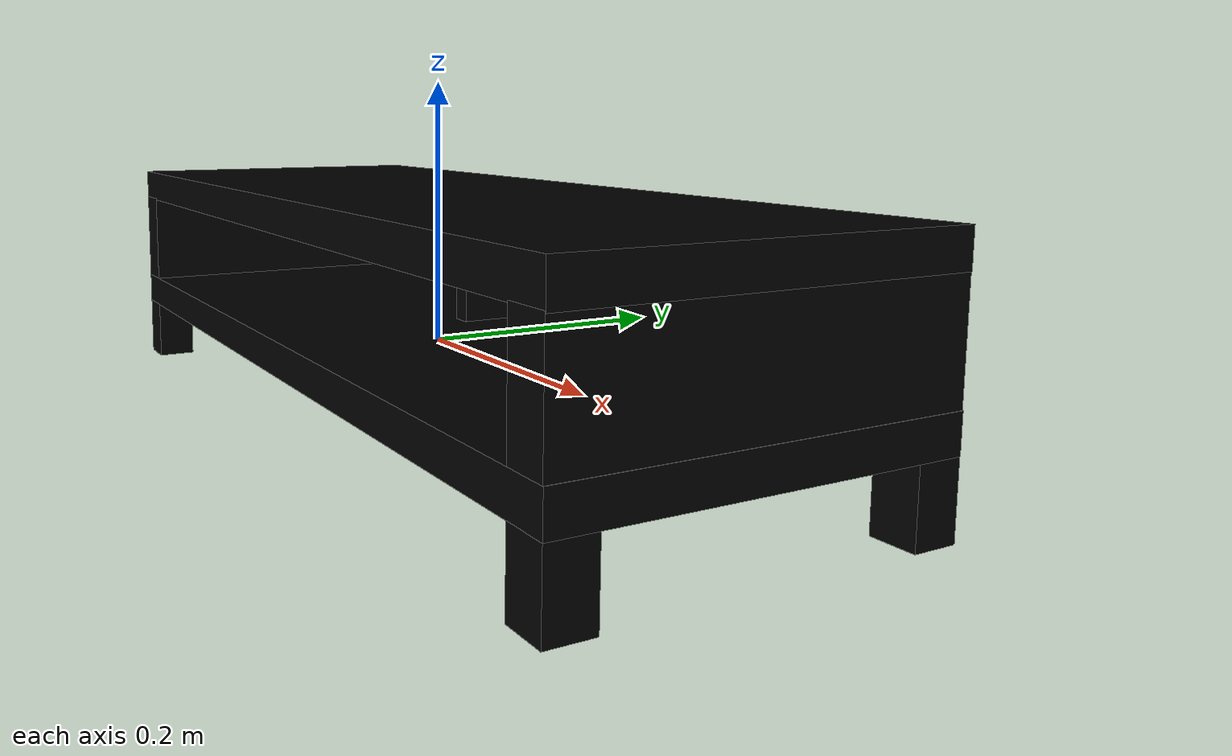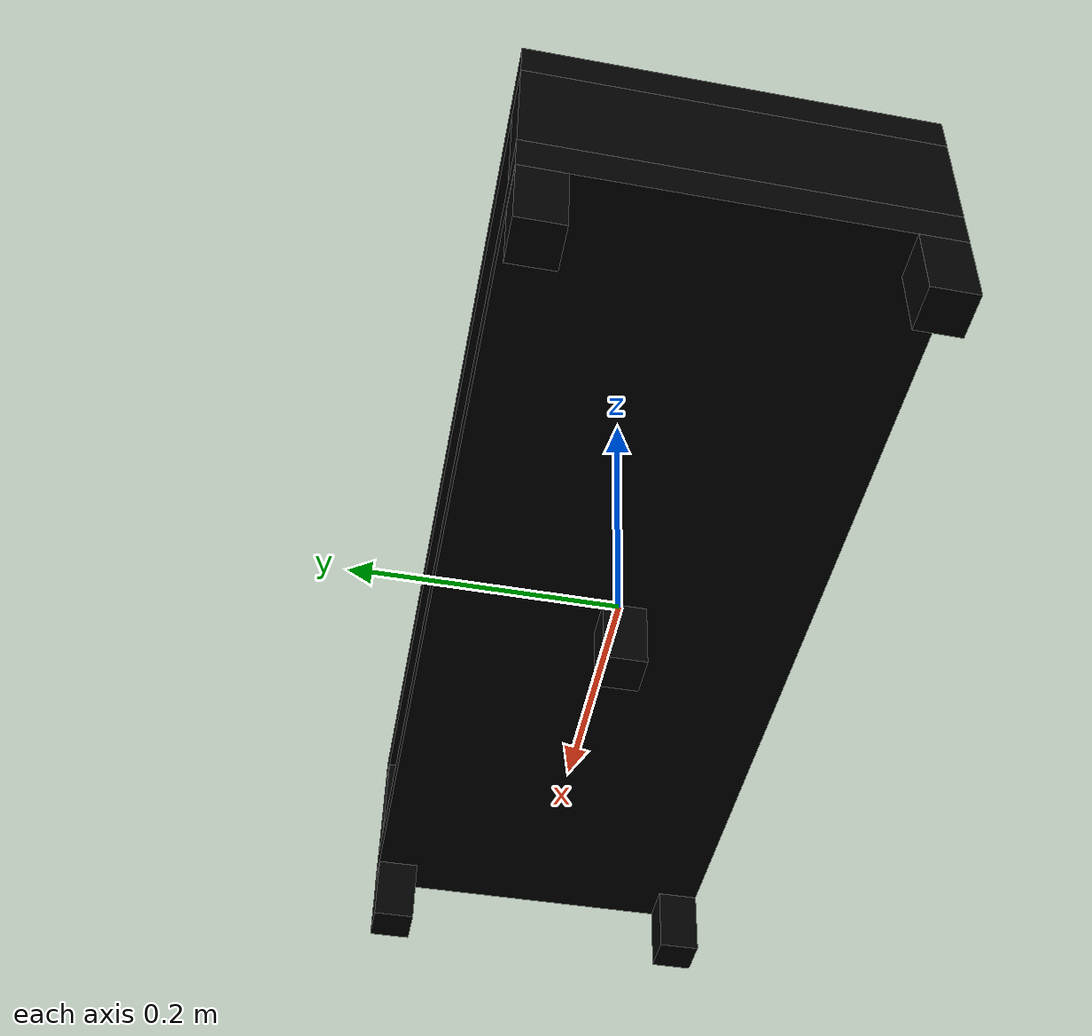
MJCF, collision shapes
<mujoco model="tvunit_lack_0830">
    <custom>
        <numeric data="0.063734 0.203201 0.013249 0 -0 -1 0" name="0_part0_initpos"/>
        <numeric data="0.072383 -0.174408 0.013078 0 -1 0 0" name="9_part9_initpos"/>
        <numeric data="0.541 0.009119 0.0078 0.706761 0.022102 -0.706761 0.022102" name="8_part8_initpos"/>
        <numeric data="0.573934 -0.229309 0.016028 -0.706631 -0.025943 0.706631 -0.025943" name="7_part7_initpos"/>
        <numeric data="-0.41802 -0.221782 0.015554 0.035814 -0.706199 0.035814 0.706199" name="6_part6_initpos"/>
        <numeric data="-0.387543 0.045523 0.015872 0.70687 -0.70687 -0.018287 0.018287" name="5_part5_initpos"/>
        <numeric data="-0.399809 0.305374 0.016183 0.706684 -0.706684 0.024436 -0.024436" name="4_part4_initpos"/>
        <numeric data="0.542062 0.292214 0.016183 0.707107 -0.707107 3.4e-05 -3.4e-05" name="3_part3_initpos"/>
        <numeric data="-0.391025 0.170627 0.015872 0.707052 -0.707052 -0.008812 0.008812" name="2_part2_initpos"/>
        <numeric data="0.536927 0.149925 0.016183 0.706708 -0.706708 -0.023737 0.023737" name="1_part1_initpos"/>
    </custom>
    <asset>
        <mesh file="tvunit_lack_0830/0.stl" name="part0" scale="0.0005 0.0005 0.0005"/>
        <mesh file="tvunit_lack_0830/9.stl" name="part9" scale="0.0005 0.0005 0.0005"/>
        <mesh file="tvunit_lack_0830/8.stl" name="part8" scale="0.0005 0.0005 0.0005"/>
        <mesh file="tvunit_lack_0830/7.stl" name="part7" scale="0.0005 0.0005 0.0005"/>
        <mesh file="tvunit_lack_0830/6.stl" name="part6" scale="0.0005 0.0005 0.0005"/>
        <mesh file="tvunit_lack_0830/5.stl" name="part5" scale="0.0005 0.0005 0.0005"/>
        <mesh file="tvunit_lack_0830/4.stl" name="part4" scale="0.0005 0.0005 0.0005"/>
        <mesh file="tvunit_lack_0830/3.stl" name="part3" scale="0.0005 0.0005 0.0005"/>
        <mesh file="tvunit_lack_0830/2.stl" name="part2" scale="0.0005 0.0005 0.0005"/>
        <mesh file="tvunit_lack_0830/1.stl" name="part1" scale="0.0005 0.0005 0.0005"/>
    </asset>
    <equality>
        <weld active="false" body1="9_part9" body2="8_part8" solimp="1 1 0.5" solref="0.01 0.3"/>
        <weld active="false" body1="0_part0" body2="4_part4" solimp="1 1 0.5" solref="0.01 0.3"/>
        <weld active="false" body1="0_part0" body2="1_part1" solimp="1 1 0.5" solref="0.01 0.3"/>
        <weld active="false" body1="0_part0" body2="5_part5" solimp="1 1 0.5" solref="0.01 0.3"/>
        <weld active="false" body1="0_part0" body2="2_part2" solimp="1 1 0.5" solref="0.01 0.3"/>
        <weld active="false" body1="0_part0" body2="3_part3" solimp="1 1 0.5" solref="0.01 0.3"/>
        <weld active="false" body1="0_part0" body2="8_part8" solimp="1 1 0.5" solref="0.01 0.3"/>
        <weld active="false" body1="0_part0" body2="6_part6" solimp="1 1 0.5" solref="0.01 0.3"/>
        <weld active="false" body1="0_part0" body2="7_part7" solimp="1 1 0.5" solref="0.01 0.3"/>
        <weld active="false" body1="9_part9" body2="6_part6" solimp="1 1 0.5" solref="0.01 0.3"/>
        <weld active="false" body1="9_part9" body2="7_part7" solimp="1 1 0.5" solref="0.01 0.3"/>
        <weld active="false" body1="0_part0" body2="8_part8" solimp="1 1 0.5" solref="0.01 0.3"/>
        <weld active="false" body1="0_part0" body2="6_part6" solimp="1 1 0.5" solref="0.01 0.3"/>
        <weld active="false" body1="0_part0" body2="7_part7" solimp="1 1 0.5" solref="0.01 0.3"/>
        <weld active="false" body1="9_part9" body2="6_part6" solimp="1 1 0.5" solref="0.01 0.3"/>
        <weld active="false" body1="9_part9" body2="7_part7" solimp="1 1 0.5" solref="0.01 0.3"/>
        <weld active="false" body1="9_part9" body2="8_part8" solimp="1 1 0.5" solref="0.01 0.3"/>
        <weld active="false" body1="0_part0" body2="2_part2" solimp="1 1 0.5" solref="0.01 0.3"/>
        <weld active="false" body1="0_part0" body2="1_part1" solimp="1 1 0.5" solref="0.01 0.3"/>
        <weld active="false" body1="0_part0" body2="5_part5" solimp="1 1 0.5" solref="0.01 0.3"/>
        <weld active="false" body1="0_part0" body2="3_part3" solimp="1 1 0.5" solref="0.01 0.3"/>
        <weld active="false" body1="0_part0" body2="4_part4" solimp="1 1 0.5" solref="0.01 0.3"/>
    </equality>
    <worldbody>
        <body name="0_part0" pos="0.0 0.0 0.0" quat="1 0 0 0">
            <geom conaffinity="0" contype="0" density="0" mesh="part0" name="0_part0_mesh" pos="0.0 0.0 0.0"
                  rgba="0.82 0.71 0.55 1" type="mesh"/>
            <site name="0_part0_horizontal_radius_site" pos="0.0 0.0 0.0" quat="1 0 0 0" rgba="0 0 0 0" size="0.0005"/>
            <site name="0_part0_top_site" pos="0.0 0.0 0.0132492752" quat="1 0 0 0" rgba="0 0 0 0" size="0.0005"/>
            <site name="0_part0_bottom_site" pos="0.0 0.0 -0.0132492752" quat="1 0 0 0" rgba="0 0 0 0" size="0.0005"/>
            <site name="0_part0_corner_site8" pos="-0.36830001830000003 0.13853962709999998 0.0132492752" quat="1 0 0 0"
                  rgba="0 0 0 0" size="0.010000000000000002"/>
            <site name="0_part0_corner_site7" pos="0.36830001830000003 0.13853962709999998 0.0132492752" quat="1 0 0 0"
                  rgba="0 0 0 0" size="0.010000000000000002"/>
            <site name="0_part0_corner_site6" pos="0.36830001830000003 -0.13853962709999998 0.0132492752" quat="1 0 0 0"
                  rgba="0 0 0 0" size="0.010000000000000002"/>
            <site name="0_part0_corner_site5" pos="-0.36830001830000003 -0.13853962709999998 0.0132492752"
                  quat="1 0 0 0" rgba="0 0 0 0" size="0.010000000000000002"/>
            <site name="0_part0_corner_site4" pos="-0.36830001830000003 0.13853962709999998 -0.0132492752"
                  quat="1 0 0 0" rgba="0 0 0 0" size="0.010000000000000002"/>
            <site name="0_part0_corner_site3" pos="0.36830001830000003 0.13853962709999998 -0.0132492752" quat="1 0 0 0"
                  rgba="0 0 0 0" size="0.010000000000000002"/>
            <site name="0_part0_corner_site2" pos="0.36830001830000003 -0.13853962709999998 -0.0132492752"
                  quat="1 0 0 0" rgba="0 0 0 0" size="0.010000000000000002"/>
            <site name="0_part0_corner_site1" pos="-0.36830001830000003 -0.13853962709999998 -0.0132492752"
                  quat="1 0 0 0" rgba="0 0 0 0" size="0.010000000000000002"/>
            <site name="bottom-leg,0,90,180,270,conn_site5" pos="-0.35250000000000004 -0.12 -0.013250000000000001"
                  quat="1 0 0 0" rgba="0.9019 0.0980 0.2941 0.3" size="0.005"/>
            <site name="bottom-leg,0,90,180,270,conn_site4" pos="-0.35250000000000004 0.12 -0.013250000000000001"
                  quat="1 0 0 0" rgba="0.9019 0.0980 0.2941 0.3" size="0.005"/>
            <site name="bottom-leg,0,90,180,270,conn_site3" pos="0.0 0.0 -0.013250000000000001" quat="1 0 0 0"
                  rgba="0.9019 0.0980 0.2941 0.3" size="0.005"/>
            <site name="bottom-leg,0,90,180,270,conn_site2" pos="0.35250000000000004 -0.12 -0.013250000000000001"
                  quat="1 0 0 0" rgba="0.9019 0.0980 0.2941 0.3" size="0.005"/>
            <site name="bottom-leg,0,90,180,270,conn_site1" pos="0.35250000000000004 0.12 -0.013250000000000001"
                  quat="1 0 0 0" rgba="0.9019 0.0980 0.2941 0.3" size="0.005"/>
            <site name="bottom-side,0,180,conn_site4" pos="0.35250000000000004 0.0 0.0125" quat="1 0 0 0"
                  rgba="0.2352 0.7058 0.2941 0.3" size="0.005"/>
            <site name="bottom-side,0,180,conn_site3" pos="-0.35250000000000004 0.0 0.0125" quat="1 0 0 0"
                  rgba="0.2352 0.7058 0.2941 0.3" size="0.005"/>
            <site name="bottom-center,0,180,conn_site1" pos="0.0 0.06969 0.0125" quat="1 0 0 0"
                  rgba="1.0 0.8823 0.0980 0.3" size="0.005"/>
            <geom density="50" name="noviz_collision_0_part0_0"
                  pos="-2.0000000000000004e-08 1.4310000000000002e-05 1.5085000000000002e-05" quat="1 0 0 0"
                  rgba="0 0 0 0" size="0.36830000000000007 0.13855395 0.013264360000000001" solref="0.001 1"
                  type="box"/>
        </body>
        <body name="9_part9" pos="0.0 0.0 0.10476959915000002" quat="1 0 0 0">
            <geom conaffinity="0" contype="0" density="0" mesh="part9" name="9_part9_mesh" pos="0.0 0.0 0.0"
                  rgba="0.82 0.71 0.55 1" type="mesh"/>
            <site name="9_part9_horizontal_radius_site" pos="0.0 0.0 5.000000000000001e-11" quat="1 0 0 0"
                  rgba="0 0 0 0" size="0.0005"/>
            <site name="9_part9_top_site" pos="0.0 0.0 0.0132492752" quat="1 0 0 0" rgba="0 0 0 0" size="0.0005"/>
            <site name="9_part9_bottom_site" pos="0.0 0.0 -0.0132492751" quat="1 0 0 0" rgba="0 0 0 0" size="0.0005"/>
            <site name="9_part9_corner_site8" pos="-0.36830001830000003 0.13853962709999998 0.0132492752" quat="1 0 0 0"
                  rgba="0 0 0 0" size="0.010000000000000002"/>
            <site name="9_part9_corner_site7" pos="0.36830001830000003 0.13853962709999998 0.0132492752" quat="1 0 0 0"
                  rgba="0 0 0 0" size="0.010000000000000002"/>
            <site name="9_part9_corner_site6" pos="0.36830001830000003 -0.13853962709999998 0.0132492752" quat="1 0 0 0"
                  rgba="0 0 0 0" size="0.010000000000000002"/>
            <site name="9_part9_corner_site5" pos="-0.36830001830000003 -0.13853962709999998 0.0132492752"
                  quat="1 0 0 0" rgba="0 0 0 0" size="0.010000000000000002"/>
            <site name="9_part9_corner_site4" pos="-0.36830001830000003 0.13853962709999998 -0.0132492751"
                  quat="1 0 0 0" rgba="0 0 0 0" size="0.010000000000000002"/>
            <site name="9_part9_corner_site3" pos="0.36830001830000003 0.13853962709999998 -0.0132492751" quat="1 0 0 0"
                  rgba="0 0 0 0" size="0.010000000000000002"/>
            <site name="9_part9_corner_site2" pos="0.36830001830000003 -0.13853962709999998 -0.0132492751"
                  quat="1 0 0 0" rgba="0 0 0 0" size="0.010000000000000002"/>
            <site name="9_part9_corner_site1" pos="-0.36830001830000003 -0.13853962709999998 -0.0132492751"
                  quat="1 0 0 0" rgba="0 0 0 0" size="0.010000000000000002"/>
            <site name="top-side,0,180,conn_site2" pos="0.35250000000000004 0.0 -0.013269600000000001" quat="0 1 0 0"
                  rgba="0.2627 0.3882 0.8470 0.3" size="0.005"/>
            <site name="top-side,0,180,conn_site1" pos="-0.35250000000000004 0.0 -0.013269600000000001" quat="0 1 0 0"
                  rgba="0.2627 0.3882 0.8470 0.3" size="0.005"/>
            <site name="top-center,0,180,conn_site1" pos="0.0 0.06969 -0.013269600000000001" quat="0 1 0 0"
                  rgba="0.9607 0.5098 0.1921 0.3" size="0.005"/>
            <geom density="50" name="noviz_collision_9_part9_0"
                  pos="3.1150000000000007e-06 -3.825000000000001e-06 -7.0685e-05" quat="1 0 0 0" rgba="0 0 0 0"
                  size="0.36830315 0.1385358 0.013178590000000002" solref="0.001 1" type="box"/>
        </body>
        <body name="8_part8" pos="-0.0002363927 0.06955808375 0.052384798700000006" quat="1 0 0 0">
            <geom conaffinity="0" contype="0" density="0" mesh="part8" name="8_part8_mesh" pos="0.0 0.0 0.0"
                  rgba="0.82 0.71 0.55 1" type="mesh"/>
            <site name="8_part8_horizontal_radius_site" pos="1.0000000000000002e-10 4.5e-10 -0.0" quat="1 0 0 0"
                  rgba="0 0 0 0" size="0.0005"/>
            <site name="8_part8_top_site" pos="5.000000000000001e-11 5e-10 0.0391355253" quat="1 0 0 0" rgba="0 0 0 0"
                  size="0.0005"/>
            <site name="8_part8_bottom_site" pos="5.000000000000001e-11 5e-10 -0.0391355253" quat="1 0 0 0"
                  rgba="0 0 0 0" size="0.0005"/>
            <site name="8_part8_corner_site8" pos="-0.007830292700000002 0.048740226750000004 0.0391355253"
                  quat="1 0 0 0" rgba="0 0 0 0" size="0.010000000000000002"/>
            <site name="8_part8_corner_site7" pos="0.007830292850000002 0.048740226750000004 0.0391355253"
                  quat="1 0 0 0" rgba="0 0 0 0" size="0.010000000000000002"/>
            <site name="8_part8_corner_site6" pos="0.007830292850000002 -0.0487402258 0.0391355253" quat="1 0 0 0"
                  rgba="0 0 0 0" size="0.010000000000000002"/>
            <site name="8_part8_corner_site5" pos="-0.007830292700000002 -0.0487402258 0.0391355253" quat="1 0 0 0"
                  rgba="0 0 0 0" size="0.010000000000000002"/>
            <site name="8_part8_corner_site4" pos="-0.007830292700000002 0.048740226750000004 -0.0391355253"
                  quat="1 0 0 0" rgba="0 0 0 0" size="0.010000000000000002"/>
            <site name="8_part8_corner_site3" pos="0.007830292850000002 0.048740226750000004 -0.0391355253"
                  quat="1 0 0 0" rgba="0 0 0 0" size="0.010000000000000002"/>
            <site name="8_part8_corner_site2" pos="0.007830292850000002 -0.0487402258 -0.0391355253" quat="1 0 0 0"
                  rgba="0 0 0 0" size="0.010000000000000002"/>
            <site name="8_part8_corner_site1" pos="-0.007830292700000002 -0.0487402258 -0.0391355253" quat="1 0 0 0"
                  rgba="0 0 0 0" size="0.010000000000000002"/>
            <site name="center-bottom,0,180,conn_site1" pos="0.00023639500000000003 0.00013192000000000002 -0.0398848"
                  quat="1 0 0 0" rgba="1.0 0.8823 0.0980 0.3" size="0.005"/>
            <site name="center-top,0,180,conn_site1" pos="0.00023639500000000003 0.00013192000000000002 0.0391152"
                  quat="0 1 0 0" rgba="0.9607 0.5098 0.1921 0.3" size="0.005"/>
            <geom density="50" name="noviz_collision_8_part8_0" pos="5.01e-06 0.00013191 0.0" quat="1 0 0 0"
                  rgba="0 0 0 0" size="0.007835305 0.04887214000000001 0.03913553" solref="0.001 1" type="box"/>
        </body>
        <body name="7_part7" pos="-0.35224241354999997 0.0 0.052384798700000006" quat="1 0 0 0">
            <geom conaffinity="0" contype="0" density="0" mesh="part7" name="7_part7_mesh" pos="0.0 0.0 0.0"
                  rgba="0.82 0.71 0.55 1" type="mesh"/>
            <site name="7_part7_horizontal_radius_site" pos="-0.0 0.0 0.0" quat="1 0 0 0" rgba="0 0 0 0" size="0.0005"/>
            <site name="7_part7_top_site" pos="-5.000000000000001e-11 0.0 0.0391355253" quat="1 0 0 0" rgba="0 0 0 0"
                  size="0.0005"/>
            <site name="7_part7_bottom_site" pos="-5.000000000000001e-11 0.0 -0.0391355253" quat="1 0 0 0"
                  rgba="0 0 0 0" size="0.0005"/>
            <site name="7_part7_corner_site8" pos="-0.016057600050000002 0.13853962709999998 0.0391355253"
                  quat="1 0 0 0" rgba="0 0 0 0" size="0.010000000000000002"/>
            <site name="7_part7_corner_site7" pos="0.0160576 0.13853962709999998 0.0391355253" quat="1 0 0 0"
                  rgba="0 0 0 0" size="0.010000000000000002"/>
            <site name="7_part7_corner_site6" pos="0.0160576 -0.13853962709999998 0.0391355253" quat="1 0 0 0"
                  rgba="0 0 0 0" size="0.010000000000000002"/>
            <site name="7_part7_corner_site5" pos="-0.016057600050000002 -0.13853962709999998 0.0391355253"
                  quat="1 0 0 0" rgba="0 0 0 0" size="0.010000000000000002"/>
            <site name="7_part7_corner_site4" pos="-0.016057600050000002 0.13853962709999998 -0.0391355253"
                  quat="1 0 0 0" rgba="0 0 0 0" size="0.010000000000000002"/>
            <site name="7_part7_corner_site3" pos="0.0160576 0.13853962709999998 -0.0391355253" quat="1 0 0 0"
                  rgba="0 0 0 0" size="0.010000000000000002"/>
            <site name="7_part7_corner_site2" pos="0.0160576 -0.13853962709999998 -0.0391355253" quat="1 0 0 0"
                  rgba="0 0 0 0" size="0.010000000000000002"/>
            <site name="7_part7_corner_site1" pos="-0.016057600050000002 -0.13853962709999998 -0.0391355253"
                  quat="1 0 0 0" rgba="0 0 0 0" size="0.010000000000000002"/>
            <site name="side-bottom,0,180,conn_site3" pos="-0.00025760000000000003 0.0 -0.0398848" quat="1 0 0 0"
                  rgba="0.2352 0.7058 0.2941 0.3" size="0.005"/>
            <site name="side-top,0,180,conn_site1" pos="-0.00025760000000000003 0.0 0.0391152" quat="0 1 0 0"
                  rgba="0.2627 0.3882 0.8470 0.3" size="0.005"/>
            <geom density="50" name="noviz_collision_7_part7_0" pos="0.000236755 0.0 0.0006218850000000001"
                  quat="1 0 0 0" rgba="0 0 0 0" size="0.016294375 0.13853965 0.039757415000000004" solref="0.001 1"
                  type="box"/>
        </body>
        <body name="6_part6" pos="0.35224239640000005 0.0 0.052384798700000006" quat="1 0 0 0">
            <geom conaffinity="0" contype="0" density="0" mesh="part6" name="6_part6_mesh" pos="0.0 0.0 0.0"
                  rgba="0.82 0.71 0.55 1" type="mesh"/>
            <site name="6_part6_horizontal_radius_site" pos="0.0 0.0 0.0" quat="1 0 0 0" rgba="0 0 0 0" size="0.0005"/>
            <site name="6_part6_top_site" pos="0.0 0.0 0.0391355253" quat="1 0 0 0" rgba="0 0 0 0" size="0.0005"/>
            <site name="6_part6_bottom_site" pos="0.0 0.0 -0.0391355253" quat="1 0 0 0" rgba="0 0 0 0" size="0.0005"/>
            <site name="6_part6_corner_site8" pos="-0.0160576172 0.13853962709999998 0.0391355253" quat="1 0 0 0"
                  rgba="0 0 0 0" size="0.010000000000000002"/>
            <site name="6_part6_corner_site7" pos="0.0160576172 0.13853962709999998 0.0391355253" quat="1 0 0 0"
                  rgba="0 0 0 0" size="0.010000000000000002"/>
            <site name="6_part6_corner_site6" pos="0.0160576172 -0.13853962709999998 0.0391355253" quat="1 0 0 0"
                  rgba="0 0 0 0" size="0.010000000000000002"/>
            <site name="6_part6_corner_site5" pos="-0.0160576172 -0.13853962709999998 0.0391355253" quat="1 0 0 0"
                  rgba="0 0 0 0" size="0.010000000000000002"/>
            <site name="6_part6_corner_site4" pos="-0.0160576172 0.13853962709999998 -0.0391355253" quat="1 0 0 0"
                  rgba="0 0 0 0" size="0.010000000000000002"/>
            <site name="6_part6_corner_site3" pos="0.0160576172 0.13853962709999998 -0.0391355253" quat="1 0 0 0"
                  rgba="0 0 0 0" size="0.010000000000000002"/>
            <site name="6_part6_corner_site2" pos="0.0160576172 -0.13853962709999998 -0.0391355253" quat="1 0 0 0"
                  rgba="0 0 0 0" size="0.010000000000000002"/>
            <site name="6_part6_corner_site1" pos="-0.0160576172 -0.13853962709999998 -0.0391355253" quat="1 0 0 0"
                  rgba="0 0 0 0" size="0.010000000000000002"/>
            <site name="side-bottom,0,180,conn_site4" pos="0.00025760000000000003 0.0 -0.0398848" quat="1 0 0 0"
                  rgba="0.2352 0.7058 0.2941 0.3" size="0.005"/>
            <site name="side-top,0,180,conn_site2" pos="0.00025760000000000003 0.0 0.0391152" quat="0 1 0 0"
                  rgba="0.2627 0.3882 0.8470 0.3" size="0.005"/>
            <geom density="50" name="noviz_collision_6_part6_0" pos="-0.000236785 0.0 0.0006218850000000001"
                  quat="1 0 0 0" rgba="0 0 0 0" size="0.015820830000000004 0.13853965 0.039757415000000004"
                  solref="0.001 1" type="box"/>
        </body>
        <body name="5_part5" pos="0.3522392462000001 0.12247572000000001 -0.039096068350000006" quat="1 0 0 0">
            <geom conaffinity="0" contype="0" density="0" mesh="part5" name="5_part5_mesh" pos="0.0 0.0 0.0"
                  rgba="0.82 0.71 0.55 1" type="mesh"/>
            <site name="5_part5_horizontal_radius_site" pos="2.5e-10 -3.5000000000000003e-10 -3e-10" quat="1 0 0 0"
                  rgba="0 0 0 0" size="0.0005"/>
            <site name="5_part5_top_site" pos="2.5e-10 -4.0000000000000007e-10 0.0258467954" quat="1 0 0 0"
                  rgba="0 0 0 0" size="0.0005"/>
            <site name="5_part5_bottom_site" pos="2.5e-10 -4.0000000000000007e-10 -0.02584679605" quat="1 0 0 0"
                  rgba="0 0 0 0" size="0.0005"/>
            <site name="5_part5_corner_site8" pos="-0.01606076765 0.01605760955 0.0258467954" quat="1 0 0 0"
                  rgba="0 0 0 0" size="0.010000000000000002"/>
            <site name="5_part5_corner_site7" pos="0.01606076815 0.01605760955 0.0258467954" quat="1 0 0 0"
                  rgba="0 0 0 0" size="0.010000000000000002"/>
            <site name="5_part5_corner_site6" pos="0.01606076815 -0.0160576103 0.0258467954" quat="1 0 0 0"
                  rgba="0 0 0 0" size="0.010000000000000002"/>
            <site name="5_part5_corner_site5" pos="-0.01606076765 -0.0160576103 0.0258467954" quat="1 0 0 0"
                  rgba="0 0 0 0" size="0.010000000000000002"/>
            <site name="5_part5_corner_site4" pos="-0.01606076765 0.01605760955 -0.02584679605" quat="1 0 0 0"
                  rgba="0 0 0 0" size="0.010000000000000002"/>
            <site name="5_part5_corner_site3" pos="0.01606076815 0.01605760955 -0.02584679605" quat="1 0 0 0"
                  rgba="0 0 0 0" size="0.010000000000000002"/>
            <site name="5_part5_corner_site2" pos="0.01606076815 -0.0160576103 -0.02584679605" quat="1 0 0 0"
                  rgba="0 0 0 0" size="0.010000000000000002"/>
            <site name="5_part5_corner_site1" pos="-0.01606076765 -0.0160576103 -0.02584679605" quat="1 0 0 0"
                  rgba="0 0 0 0" size="0.010000000000000002"/>
            <site name="leg-bottom,0,90,180,270,conn_site1"
                  pos="0.00026074000000000003 -0.0024757250000000002 0.02584607" quat="1 0 0 0"
                  rgba="0.9019 0.0980 0.2941 0.3" size="0.005"/>
            <geom density="50" name="noviz_collision_5_part5_0" pos="-7.37e-05 -7.766000000000001e-05 0.000104315"
                  quat="1 0 0 0" rgba="0 0 0 0" size="0.015987090000000002 0.01597996 0.02595111" solref="0.001 1"
                  type="box"/>
        </body>
        <body name="4_part4" pos="0.3522392462000001 -0.12248202155000001 -0.039096068350000006" quat="1 0 0 0">
            <geom conaffinity="0" contype="0" density="0" mesh="part4" name="4_part4_mesh" pos="0.0 0.0 0.0"
                  rgba="0.82 0.71 0.55 1" type="mesh"/>
            <site name="4_part4_horizontal_radius_site" pos="2.5e-10 0.0 -3e-10" quat="1 0 0 0" rgba="0 0 0 0"
                  size="0.0005"/>
            <site name="4_part4_top_site" pos="2.5e-10 0.0 0.0258467954" quat="1 0 0 0" rgba="0 0 0 0" size="0.0005"/>
            <site name="4_part4_bottom_site" pos="2.5e-10 0.0 -0.02584679605" quat="1 0 0 0" rgba="0 0 0 0"
                  size="0.0005"/>
            <site name="4_part4_corner_site8" pos="-0.01606076765 0.01605763245 0.0258467954" quat="1 0 0 0"
                  rgba="0 0 0 0" size="0.010000000000000002"/>
            <site name="4_part4_corner_site7" pos="0.01606076815 0.01605763245 0.0258467954" quat="1 0 0 0"
                  rgba="0 0 0 0" size="0.010000000000000002"/>
            <site name="4_part4_corner_site6" pos="0.01606076815 -0.01605763245 0.0258467954" quat="1 0 0 0"
                  rgba="0 0 0 0" size="0.010000000000000002"/>
            <site name="4_part4_corner_site5" pos="-0.01606076765 -0.01605763245 0.0258467954" quat="1 0 0 0"
                  rgba="0 0 0 0" size="0.010000000000000002"/>
            <site name="4_part4_corner_site4" pos="-0.01606076765 0.01605763245 -0.02584679605" quat="1 0 0 0"
                  rgba="0 0 0 0" size="0.010000000000000002"/>
            <site name="4_part4_corner_site3" pos="0.01606076815 0.01605763245 -0.02584679605" quat="1 0 0 0"
                  rgba="0 0 0 0" size="0.010000000000000002"/>
            <site name="4_part4_corner_site2" pos="0.01606076815 -0.01605763245 -0.02584679605" quat="1 0 0 0"
                  rgba="0 0 0 0" size="0.010000000000000002"/>
            <site name="4_part4_corner_site1" pos="-0.01606076765 -0.01605763245 -0.02584679605" quat="1 0 0 0"
                  rgba="0 0 0 0" size="0.010000000000000002"/>
            <site name="leg-bottom,0,90,180,270,conn_site2"
                  pos="0.00026074000000000003 0.0024820250000000006 0.02584607" quat="1 0 0 0"
                  rgba="0.9019 0.0980 0.2941 0.3" size="0.005"/>
            <geom density="50" name="noviz_collision_4_part4_0" pos="-7.37e-05 7.7645e-05 0.000104315" quat="1 0 0 0"
                  rgba="0 0 0 0" size="0.015987090000000002 0.016135275 0.02595111" solref="0.001 1" type="box"/>
        </body>
        <body name="3_part3" pos="-1.3600000000000001e-08 -0.0010706179 -0.039096068350000006" quat="1 0 0 0">
            <geom conaffinity="0" contype="0" density="0" mesh="part3" name="3_part3_mesh" pos="0.0 0.0 0.0"
                  rgba="0.82 0.71 0.55 1" type="mesh"/>
            <site name="3_part3_horizontal_radius_site" pos="0.0 0.0 -3e-10" quat="1 0 0 0" rgba="0 0 0 0"
                  size="0.0005"/>
            <site name="3_part3_top_site" pos="0.0 0.0 0.0258467954" quat="1 0 0 0" rgba="0 0 0 0" size="0.0005"/>
            <site name="3_part3_bottom_site" pos="0.0 0.0 -0.02584679605" quat="1 0 0 0" rgba="0 0 0 0" size="0.0005"/>
            <site name="3_part3_corner_site8" pos="-0.01606075405 0.01605761335 0.0258467954" quat="1 0 0 0"
                  rgba="0 0 0 0" size="0.010000000000000002"/>
            <site name="3_part3_corner_site7" pos="0.01606075405 0.01605761335 0.0258467954" quat="1 0 0 0"
                  rgba="0 0 0 0" size="0.010000000000000002"/>
            <site name="3_part3_corner_site6" pos="0.01606075405 -0.01605761335 0.0258467954" quat="1 0 0 0"
                  rgba="0 0 0 0" size="0.010000000000000002"/>
            <site name="3_part3_corner_site5" pos="-0.01606075405 -0.01605761335 0.0258467954" quat="1 0 0 0"
                  rgba="0 0 0 0" size="0.010000000000000002"/>
            <site name="3_part3_corner_site4" pos="-0.01606075405 0.01605761335 -0.02584679605" quat="1 0 0 0"
                  rgba="0 0 0 0" size="0.010000000000000002"/>
            <site name="3_part3_corner_site3" pos="0.01606075405 0.01605761335 -0.02584679605" quat="1 0 0 0"
                  rgba="0 0 0 0" size="0.010000000000000002"/>
            <site name="3_part3_corner_site2" pos="0.01606075405 -0.01605761335 -0.02584679605" quat="1 0 0 0"
                  rgba="0 0 0 0" size="0.010000000000000002"/>
            <site name="3_part3_corner_site1" pos="-0.01606075405 -0.01605761335 -0.02584679605" quat="1 0 0 0"
                  rgba="0 0 0 0" size="0.010000000000000002"/>
            <site name="leg-bottom,0,90,180,270,conn_site3" pos="1.5000000000000002e-08 0.00107062 0.02584607"
                  quat="1 0 0 0" rgba="0.9019 0.0980 0.2941 0.3" size="0.005"/>
            <geom density="50" name="noviz_collision_3_part3_0" pos="7.368000000000001e-05 7.7645e-05 0.000104315"
                  quat="1 0 0 0" rgba="0 0 0 0" size="0.016134435 0.016135255 0.02595111" solref="0.001 1" type="box"/>
        </body>
        <body name="2_part2" pos="-0.35223925955 0.12248201835000001 -0.039096068350000006" quat="1 0 0 0">
            <geom conaffinity="0" contype="0" density="0" mesh="part2" name="2_part2_mesh" pos="0.0 0.0 0.0"
                  rgba="0.82 0.71 0.55 1" type="mesh"/>
            <site name="2_part2_horizontal_radius_site" pos="0.0 2.0000000000000003e-10 -3e-10" quat="1 0 0 0"
                  rgba="0 0 0 0" size="0.0005"/>
            <site name="2_part2_top_site" pos="0.0 2.0000000000000003e-10 0.0258467954" quat="1 0 0 0" rgba="0 0 0 0"
                  size="0.0005"/>
            <site name="2_part2_bottom_site" pos="0.0 2.0000000000000003e-10 -0.02584679605" quat="1 0 0 0"
                  rgba="0 0 0 0" size="0.0005"/>
            <site name="2_part2_corner_site8" pos="-0.01606075405 0.016057605750000002 0.0258467954" quat="1 0 0 0"
                  rgba="0 0 0 0" size="0.010000000000000002"/>
            <site name="2_part2_corner_site7" pos="0.01606075405 0.016057605750000002 0.0258467954" quat="1 0 0 0"
                  rgba="0 0 0 0" size="0.010000000000000002"/>
            <site name="2_part2_corner_site6" pos="0.01606075405 -0.01605760535 0.0258467954" quat="1 0 0 0"
                  rgba="0 0 0 0" size="0.010000000000000002"/>
            <site name="2_part2_corner_site5" pos="-0.01606075405 -0.01605760535 0.0258467954" quat="1 0 0 0"
                  rgba="0 0 0 0" size="0.010000000000000002"/>
            <site name="2_part2_corner_site4" pos="-0.01606075405 0.016057605750000002 -0.02584679605" quat="1 0 0 0"
                  rgba="0 0 0 0" size="0.010000000000000002"/>
            <site name="2_part2_corner_site3" pos="0.01606075405 0.016057605750000002 -0.02584679605" quat="1 0 0 0"
                  rgba="0 0 0 0" size="0.010000000000000002"/>
            <site name="2_part2_corner_site2" pos="0.01606075405 -0.01605760535 -0.02584679605" quat="1 0 0 0"
                  rgba="0 0 0 0" size="0.010000000000000002"/>
            <site name="2_part2_corner_site1" pos="-0.01606075405 -0.01605760535 -0.02584679605" quat="1 0 0 0"
                  rgba="0 0 0 0" size="0.010000000000000002"/>
            <site name="leg-bottom,0,90,180,270,conn_site4" pos="-0.00026074000000000003 -0.00248202 0.02584607"
                  quat="1 0 0 0" rgba="0.9019 0.0980 0.2941 0.3" size="0.005"/>
            <geom density="50" name="noviz_collision_2_part2_0" pos="7.367e-05 -7.765e-05 0.000104315" quat="1 0 0 0"
                  rgba="0 0 0 0" size="0.01613443 0.015979950000000003 0.02595111" solref="0.001 1" type="box"/>
        </body>
        <body name="1_part1" pos="-0.35223925955 -0.12248202155000001 -0.039096068350000006" quat="1 0 0 0">
            <geom conaffinity="0" contype="0" density="0" mesh="part1" name="1_part1_mesh" pos="0.0 0.0 0.0"
                  rgba="0.82 0.71 0.55 1" type="mesh"/>
            <site name="1_part1_horizontal_radius_site" pos="0.0 0.0 -3e-10" quat="1 0 0 0" rgba="0 0 0 0"
                  size="0.0005"/>
            <site name="1_part1_top_site" pos="0.0 0.0 0.0258467954" quat="1 0 0 0" rgba="0 0 0 0" size="0.0005"/>
            <site name="1_part1_bottom_site" pos="0.0 0.0 -0.02584679605" quat="1 0 0 0" rgba="0 0 0 0" size="0.0005"/>
            <site name="1_part1_corner_site8" pos="-0.01606075405 0.01605763245 0.0258467954" quat="1 0 0 0"
                  rgba="0 0 0 0" size="0.010000000000000002"/>
            <site name="1_part1_corner_site7" pos="0.01606075405 0.01605763245 0.0258467954" quat="1 0 0 0"
                  rgba="0 0 0 0" size="0.010000000000000002"/>
            <site name="1_part1_corner_site6" pos="0.01606075405 -0.01605763245 0.0258467954" quat="1 0 0 0"
                  rgba="0 0 0 0" size="0.010000000000000002"/>
            <site name="1_part1_corner_site5" pos="-0.01606075405 -0.01605763245 0.0258467954" quat="1 0 0 0"
                  rgba="0 0 0 0" size="0.010000000000000002"/>
            <site name="1_part1_corner_site4" pos="-0.01606075405 0.01605763245 -0.02584679605" quat="1 0 0 0"
                  rgba="0 0 0 0" size="0.010000000000000002"/>
            <site name="1_part1_corner_site3" pos="0.01606075405 0.01605763245 -0.02584679605" quat="1 0 0 0"
                  rgba="0 0 0 0" size="0.010000000000000002"/>
            <site name="1_part1_corner_site2" pos="0.01606075405 -0.01605763245 -0.02584679605" quat="1 0 0 0"
                  rgba="0 0 0 0" size="0.010000000000000002"/>
            <site name="1_part1_corner_site1" pos="-0.01606075405 -0.01605763245 -0.02584679605" quat="1 0 0 0"
                  rgba="0 0 0 0" size="0.010000000000000002"/>
            <site name="leg-bottom,0,90,180,270,conn_site5"
                  pos="-0.00026074000000000003 0.0024820250000000006 0.02584607" quat="1 0 0 0"
                  rgba="0.9019 0.0980 0.2941 0.3" size="0.005"/>
            <geom density="50" name="noviz_collision_1_part1_0" pos="7.367e-05 7.7645e-05 0.000104315" quat="1 0 0 0"
                  rgba="0 0 0 0" size="0.01613443 0.016135275 0.02595111" solref="0.001 1" type="box"/>
        </body>
    </worldbody>
    <actuator/>
    <sensor/>
    <contact/>
    <default/>
</mujoco>
